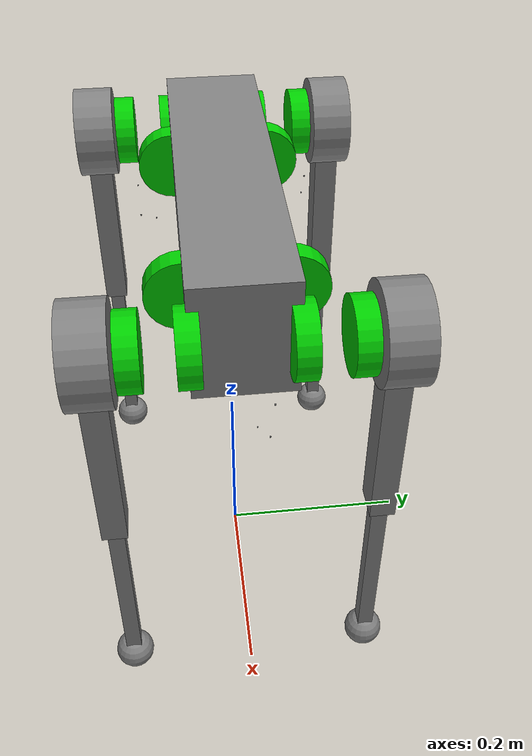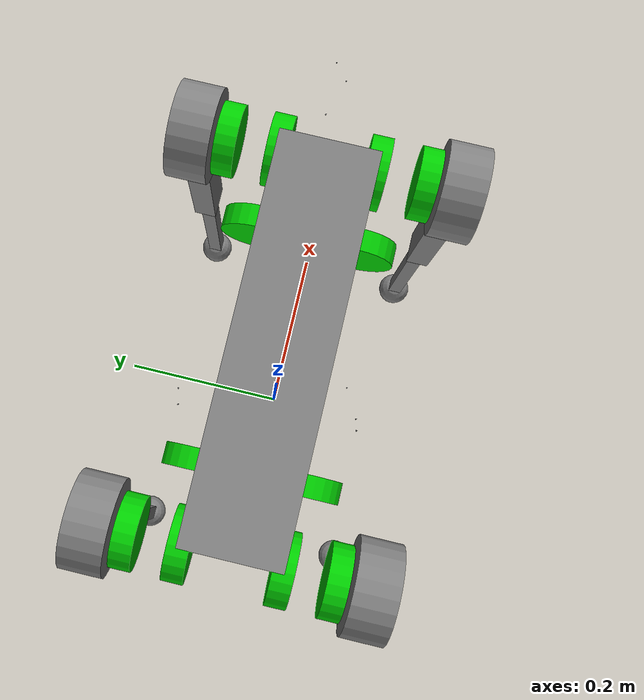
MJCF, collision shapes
<mujoco model="go1">
  <compiler angle="radian" meshdir="assets/"/>

  <option cone="elliptic" impratio="100"/>

  <default>
    <default class="go1">
      <geom friction="0.4" margin="0.001" condim="1"/>
      <joint axis="0 1 0" damping="0.1" armature="0.01" frictionloss="0.2"/>
      <motor ctrlrange="-23.7 23.7"/>
      <default class="abduction">
        <joint axis="1 0 0" range="-0.863 0.863"/>
      </default>
      <default class="hip">
        <default class="front_hip">
          <joint range="-0.686 4.501"/>
        </default>
        <default class="back_hip">
          <joint range="-0.686 4.501"/>
        </default>
      </default>
      <default class="knee">
        <joint range="-2.818 -0.888"/>
        <motor ctrlrange="-35.55 35.55"/>
      </default>
      <default class="visual">
        <geom type="mesh" contype="0" conaffinity="0" group="2" material="dark"/>
      </default>
      <default class="collision">
        <geom group="3"/>
        <default class="foot">
          <geom size="0.022" pos="-0.002 0 -0.213" priority="1" condim="6"
                friction="0.4 0.02 0.01"/>
        </default>
      </default>
    </default>
  </default>

  <asset>
    <material name="metal" rgba=".6 .6 .6 1" shininess="0.5"/>
    <material name="black" rgba=".1 .1 .1 1" shininess="0.25"/>
    <material name="dark" rgba="0.4 0.4 0.4 1" shininess="0.1"/>
    <material name="transparent" rgba="1 1 1 0.01"/>

    <mesh name="trunk" file="trunk.obj" scale="0.0001 0.0001 0.0001"/>
    <mesh name="hip" file="hip.obj" scale="0.001 0.001 0.001"/>
    <mesh name="thigh_mirror" file="thigh_mirror.obj" scale="0.001 0.001 0.001"/>
    <mesh name="calf" file="calf.obj" scale="0.001 0.001 0.001"/>
    <mesh name="thigh" file="thigh.obj" scale="0.001 0.001 0.001"/>
    <mesh name="depthCamera" file="depthCamera.obj" scale="0.001 0.001 0.001"/>
    <mesh name="ultraSound" file="ultraSound.obj" scale="0.001 0.001 0.001"/>
  </asset>

  <worldbody>
    <body name="base_link" pos="0 0 0.445" childclass="go1">
      <inertial pos="0.021112 0 -0.005366" quat="-0.000543471 0.713435 -0.00173769 0.700719"
                mass="6.921"
                diaginertia="0.107027 0.0980771 0.0244531"/>
      <freejoint/>
      <geom type="mesh" mesh="trunk" class="visual" material="dark"/>
      <geom size="0.1881 0.04675 0.057" type="box" class="collision"/>
      <geom size="0.0005 0.0005 0.0005" type="box" contype="0" conaffinity="0" group="2" density="0"/>
      <geom size="0.0005 0.0005 0.0005" pos="-0.01592 -0.06659 -0.00617" type="box" contype="0" conaffinity="0"
            group="2" density="0"/>
      <geom size="0.0005 0.0005 0.0005" pos="-0.01592 -0.06659 -0.00617" type="box"/>
      <geom size="0.035 0.01" pos="0.11215 -0.04675 0" quat="0.707107 0 0.707107 0" type="cylinder" contype="0"
            conaffinity="0" group="2" density="0" rgba="0 0.8 0 1"/>
      <geom size="0.035 0.01" pos="0.11215 -0.04675 0" quat="0.707107 0 0.707107 0" type="cylinder" rgba="0 0.8 0 1"/>
      <geom size="0.035 0.01" pos="0.11215 0.04675 0" quat="0.707107 0 0.707107 0" type="cylinder" contype="0"
            conaffinity="0" group="2" density="0" rgba="0 0.8 0 1"/>
      <geom size="0.035 0.01" pos="0.11215 0.04675 0" quat="0.707107 0 0.707107 0" type="cylinder" rgba="0 0.8 0 1"/>
      <geom size="0.035 0.01" pos="-0.11215 -0.04675 0" quat="0.707107 0 0.707107 0" type="cylinder" contype="0"
            conaffinity="0" group="2" density="0" rgba="0 0.8 0 1"/>
      <geom size="0.035 0.01" pos="-0.11215 -0.04675 0" quat="0.707107 0 0.707107 0" type="cylinder" rgba="0 0.8 0 1"/>
      <geom size="0.035 0.01" pos="-0.11215 0.04675 0" quat="0.707107 0 0.707107 0" type="cylinder" contype="0"
            conaffinity="0" group="2" density="0" rgba="0 0.8 0 1"/>
      <geom size="0.035 0.01" pos="-0.11215 0.04675 0" quat="0.707107 0 0.707107 0" type="cylinder" rgba="0 0.8 0 1"/>
      <geom size="0.0005 0.0005 0.0005" pos="0.2785 0.0125 0.0167" quat="0 1 0 0" type="box"/>
      <geom pos="0.2785 0.0125 0.0167" quat="0 1 0 0" type="mesh" contype="0" conaffinity="0" group="2" density="0"
            mesh="depthCamera"/>
      <geom size="0.0005 0.0005 0.0005" pos="0.2522 0.0125 -0.0436" quat="0 0.707107 0 -0.707107" type="box"/>
      <geom pos="0.2522 0.0125 -0.0436" quat="0 0.707107 0 -0.707107" type="mesh" contype="0" conaffinity="0" group="2"
            density="0" mesh="depthCamera"/>
      <geom size="0.0005 0.0005 0.0005" pos="-0.066 0.082 -0.0176" quat="0.0922962 0.701057 0.701057 -0.0922962"
            type="box"/>
      <geom pos="-0.066 0.082 -0.0176" quat="0.0922962 0.701057 0.701057 -0.0922962" type="mesh" contype="0"
            conaffinity="0" group="2" density="0" mesh="depthCamera"/>
      <geom size="0.0005 0.0005 0.0005" pos="-0.041 -0.082 -0.0176" quat="-0.0922962 0.701057 -0.701057 -0.0922962"
            type="box"/>
      <geom pos="-0.041 -0.082 -0.0176" quat="-0.0922962 0.701057 -0.701057 -0.0922962" type="mesh" contype="0"
            conaffinity="0" group="2" density="0" mesh="depthCamera"/>
      <geom size="0.0005 0.0005 0.0005" pos="-0.0825 0.0125 -0.04365" quat="0 0.707107 0 -0.707107" type="box"/>
      <geom pos="-0.0825 0.0125 -0.04365" quat="0 0.707107 0 -0.707107" type="mesh" contype="0" conaffinity="0"
            group="2" density="0" mesh="depthCamera"/>
      <geom size="0.0005 0.0005 0.0005" pos="-0.0535 0.0826 0.00868" quat="0.701057 -0.0922962 0.0922962 0.701057"
            type="box"/>
      <geom pos="-0.0535 0.0826 0.00868" quat="0.701057 -0.0922962 0.0922962 0.701057" type="mesh" contype="0"
            conaffinity="0" group="2" density="0" rgba="0 0 0 1" mesh="ultraSound"/>
      <geom size="0.0005 0.0005 0.0005" pos="-0.0535 -0.0826 0.00868" quat="0.701057 0.0922962 0.0922962 -0.701057"
            type="box"/>
      <geom pos="-0.0535 -0.0826 0.00868" quat="0.701057 0.0922962 0.0922962 -0.701057" type="mesh" contype="0"
            conaffinity="0" group="2" density="0" rgba="0 0 0 1" mesh="ultraSound"/>
      <geom size="0.0005 0.0005 0.0005" pos="0.2747 0 -0.0088" type="box"/>
      <geom pos="0.2747 0 -0.0088" quat="1 0 0 0" type="mesh" contype="0" conaffinity="0" group="2" density="0"
            rgba="0 0 0 1" mesh="ultraSound"/>
      <site name="imu" pos="-0.02557 0 0.04232"/>

      <body name="FL_hip" pos="0.1881 0.04675 0">
        <inertial pos="-0.0049166 -0.00762615 -8.865e-05" quat="0.482891 0.495027 0.514169 0.507341" mass="0.68"
                  diaginertia="0.000734064 0.000468438 0.000398719"/>
        <joint name="FL_hip_joint" class="abduction"/>
        <geom type="mesh" class="visual" material="metal" mesh="hip"/>
        <geom size="0.046 0.02" pos="0 0.08 0" quat="0.707107 0.707107 0 0" type="cylinder" class="collision"/>
        <geom size="0.035 0.01" pos="0 -0.00015 0" quat="0.707107 0.707107 0 0" type="cylinder" contype="0"
              conaffinity="0" group="2" density="0" rgba="0 0.8 0 1"/>
        <geom size="0.035 0.01" pos="0 -0.00015 0" quat="0.707107 0.707107 0 0" type="cylinder" rgba="0 0.8 0 1"/>
        <body name="FL_thigh" pos="0 0.08 0">
          <inertial pos="-0.00304722 -0.019315 -0.0305004" quat="0.753383 0.0775126 -0.0272313 0.65243" mass="1.009"
                    diaginertia="0.00478717 0.00460903 0.000709268"/>
          <joint name="FL_thigh_joint" class="front_hip"/>
          <geom type="mesh" class="visual" material="metal" mesh="thigh"/>
          <geom size="0.1065 0.01225 0.017" pos="0 0 -0.1065" quat="0.707107 0 0.707107 0" type="box"
                class="collision"/>
          <geom size="0.035 0.01" pos="0 -0.03235 0" quat="0.707107 0.707107 0 0" type="cylinder" contype="0"
                conaffinity="0" group="2" density="0" rgba="0 0.8 0 1"/>
          <geom size="0.035 0.01" pos="0 -0.03235 0" quat="0.707107 0.707107 0 0" type="cylinder" rgba="0 0.8 0 1"/>
          <body name="FL_calf" pos="0 0 -0.213">
            <inertial pos="0.00429862 0.000976676 -0.146197" quat="0.691246 0.00357467 0.00511118 0.722592"
                      mass="0.195862" diaginertia="0.00149767 0.00148468 3.58427e-05"/>
            <joint name="FL_calf_joint" class="knee"/>
            <geom class="visual" material="dark" type="mesh" mesh="calf"/>
            <geom size="0.1065 0.008 0.008" pos="0 0 -0.1065" quat="0.707107 0 0.707107 0" type="box"
                  class="collision"/>
            <geom size="0.01" pos="0 0 -0.213" contype="0" conaffinity="0" group="2" density="0"/>
            <geom size="0.02" pos="0 0 -0.213"/>
            <site name="FL_touch" pos="0 0 -0.213" size="0.027" material="transparent"/>
          </body>
        </body>
      </body>
      <body name="FR_hip" pos="0.1881 -0.04675 0">
        <inertial pos="-0.0049166 0.00762615 -8.865e-05" quat="0.507341 0.514169 0.495027 0.482891"
                  mass="0.68"
                  diaginertia="0.000734064 0.000468438 0.000398719"/>
        <joint name="FR_hip_joint" class="abduction"/>
        <geom quat="0 1 0 0" type="mesh" class="visual" material="metal" mesh="hip"/>
        <geom size="0.046 0.02" pos="0 -0.08 0" quat="0.707107 0.707107 0 0" type="cylinder" class="collision"/>
        <geom size="0.035 0.01" pos="0 0.00015 0" quat="0.707107 0.707107 0 0" type="cylinder" contype="0"
              conaffinity="0" group="2" density="0" rgba="0 0.8 0 1"/>
        <geom size="0.035 0.01" pos="0 0.00015 0" quat="0.707107 0.707107 0 0" type="cylinder" rgba="0 0.8 0 1"/>
        <body name="FR_thigh" pos="0 -0.08 0">
          <inertial pos="-0.00304722 0.019315 -0.0305004" quat="0.65243 -0.0272313 0.0775126 0.753383" mass="1.009"
                    diaginertia="0.00478717 0.00460903 0.000709268"/>
          <joint name="FR_thigh_joint" class="front_hip"/>
          <geom type="mesh" class="visual" material="metal" mesh="thigh_mirror"/>
          <geom size="0.1065 0.01225 0.017" pos="0 0 -0.1065" quat="0.707107 0 0.707107 0" type="box"
                class="collision"/>
          <geom size="0.035 0.01" pos="0 0.03235 0" quat="0.707107 0.707107 0 0" type="cylinder" contype="0"
                conaffinity="0" group="2" density="0" rgba="0 0.8 0 1"/>
          <geom size="0.035 0.01" pos="0 0.03235 0" quat="0.707107 0.707107 0 0" type="cylinder" rgba="0 0.8 0 1"/>
          <body name="FR_calf" pos="0 0 -0.213">
            <inertial pos="0.00429862 0.000976676 -0.146197" quat="0.691246 0.00357467 0.00511118 0.722592"
                      mass="0.195862" diaginertia="0.00149767 0.00148468 3.58427e-05"/>
            <joint name="FR_calf_joint" class="knee"/>
            <geom type="mesh" class="visual" material="dark" mesh="calf"/>
            <geom size="0.1065 0.008 0.008" pos="0 0 -0.1065" quat="0.707107 0 0.707107 0" type="box"
                  class="collision"/>
            <geom size="0.01" pos="0 0 -0.213" contype="0" conaffinity="0" group="2" density="0"/>
            <geom size="0.02" pos="0 0 -0.213"/>
            <site name="FR_touch" pos="0 0 -0.213" size="0.027" material="transparent"/>
          </body>
        </body>
      </body>
      <body name="RL_hip" pos="-0.1881 0.04675 0">
        <inertial pos="0.0049166 -0.00762615 -8.865e-05" quat="0.514169 0.507341 0.482891 0.495027" mass="0.68"
                  diaginertia="0.000734064 0.000468438 0.000398719"/>
        <joint name="RL_hip_joint" class="abduction"/>
        <geom quat="0 0 1 0" class="visual" material="metal" mesh="hip"/>
        <geom size="0.046 0.02" pos="0 0.08 0" quat="0.707107 0.707107 0 0" type="cylinder" class="collision"/>
        <geom size="0.035 0.01" pos="0 -0.00015 0" quat="0.707107 0.707107 0 0" type="cylinder" contype="0"
              conaffinity="0" group="2" density="0" rgba="0 0.8 0 1"/>
        <geom size="0.035 0.01" pos="0 -0.00015 0" quat="0.707107 0.707107 0 0" type="cylinder" rgba="0 0.8 0 1"/>
        <body name="RL_thigh" pos="0 0.08 0">
          <inertial pos="-0.00304722 -0.019315 -0.0305004" quat="0.753383 0.0775126 -0.0272313 0.65243" mass="1.009"
                    diaginertia="0.00478717 0.00460903 0.000709268"/>
          <joint name="RL_thigh_joint" class="back_hip"/>
          <geom type="mesh" class="visual" material="metal" mesh="thigh"/>
          <geom size="0.1065 0.01225 0.017" pos="0 0 -0.1065" quat="0.707107 0 0.707107 0" type="box"
                class="collision"/>
          <geom size="0.035 0.01" pos="0 -0.03235 0" quat="0.707107 0.707107 0 0" type="cylinder" contype="0"
                conaffinity="0" group="2" density="0" rgba="0 0.8 0 1"/>
          <geom size="0.035 0.01" pos="0 -0.03235 0" quat="0.707107 0.707107 0 0" type="cylinder" rgba="0 0.8 0 1"/>
          <body name="RL_calf" pos="0 0 -0.213">
            <inertial pos="0.00429862 0.000976676 -0.146197" quat="0.691246 0.00357467 0.00511118 0.722592"
                      mass="0.195862" diaginertia="0.00149767 0.00148468 3.58427e-05"/>
            <joint name="RL_calf_joint" class="knee"/>
            <geom type="mesh" class="visual" material="dark" mesh="calf"/>
            <geom size="0.1065 0.008 0.008" pos="0 0 -0.1065" quat="0.707107 0 0.707107 0" type="box"
                  class="collision"/>
            <geom size="0.01" pos="0 0 -0.213" contype="0" conaffinity="0" group="2" density="0"/>
            <geom size="0.02" pos="0 0 -0.213"/>
            <site name="RL_touch" pos="0 0 -0.213" size="0.027" material="transparent"/>
          </body>
        </body>
      </body>
      <body name="RR_hip" pos="-0.1881 -0.04675 0">
        <inertial pos="0.0049166 0.00762615 -8.865e-05" quat="0.495027 0.482891 0.507341 0.514169" mass="0.68"
                  diaginertia="0.000734064 0.000468438 0.000398719"/>
        <joint name="RR_hip_joint" class="abduction"/>
        <geom quat="0 0 0 -1" type="mesh" class="visual" material="metal" mesh="hip"/>
        <geom size="0.046 0.02" pos="0 -0.08 0" quat="0.707107 0.707107 0 0" type="cylinder" class="collision"/>
        <geom size="0.035 0.01" pos="0 0.00015 0" quat="0.707107 0.707107 0 0" type="cylinder" contype="0"
              conaffinity="0" group="2" density="0" rgba="0 0.8 0 1"/>
        <geom size="0.035 0.01" pos="0 0.00015 0" quat="0.707107 0.707107 0 0" type="cylinder" rgba="0 0.8 0 1"/>
        <body name="RR_thigh" pos="0 -0.08 0">
          <inertial pos="-0.00304722 0.019315 -0.0305004" quat="0.65243 -0.0272313 0.0775126 0.753383" mass="1.009"
                    diaginertia="0.00478717 0.00460903 0.000709268"/>
          <joint name="RR_thigh_joint" class="back_hip"/>
          <geom type="mesh" class="visual" material="metal" mesh="thigh_mirror"/>
          <geom size="0.1065 0.01225 0.017" pos="0 0 -0.1065" quat="0.707107 0 0.707107 0" type="box"
                class="collision"/>
          <geom size="0.035 0.01" pos="0 0.03235 0" quat="0.707107 0.707107 0 0" type="cylinder" contype="0"
                conaffinity="0" group="2" density="0" rgba="0 0.8 0 1"/>
          <geom size="0.035 0.01" pos="0 0.03235 0" quat="0.707107 0.707107 0 0" type="cylinder" rgba="0 0.8 0 1"/>
          <body name="RR_calf" pos="0 0 -0.213">
            <inertial pos="0.00429862 0.000976676 -0.146197" quat="0.691246 0.00357467 0.00511118 0.722592"
                      mass="0.195862" diaginertia="0.00149767 0.00148468 3.58427e-05"/>
            <joint name="RR_calf_joint" class="knee"/>
            <geom type="mesh" class="visual" material="dark" mesh="calf"/>
            <geom size="0.1065 0.008 0.008" pos="0 0 -0.1065" quat="0.707107 0 0.707107 0" type="box"
                  class="collision"/>
            <geom size="0.01" pos="0 0 -0.213" contype="0" conaffinity="0" group="2" density="0"/>
            <geom size="0.02" pos="0 0 -0.213"/>
            <site name="RR_touch" pos="0 0 -0.213" size="0.027" material="transparent"/>
          </body>
        </body>
      </body>
    </body>
  </worldbody>

  <actuator>
    <motor class="abduction" name="FR_hip" joint="FR_hip_joint"/>
    <motor class="hip" name="FR_thigh" joint="FR_thigh_joint"/>
    <motor class="knee" name="FR_calf" joint="FR_calf_joint"/>
    <motor class="abduction" name="FL_hip" joint="FL_hip_joint"/>
    <motor class="hip" name="FL_thigh" joint="FL_thigh_joint"/>
    <motor class="knee" name="FL_calf" joint="FL_calf_joint"/>
    <motor class="abduction" name="RR_hip" joint="RR_hip_joint"/>
    <motor class="hip" name="RR_thigh" joint="RR_thigh_joint"/>
    <motor class="knee" name="RR_calf" joint="RR_calf_joint"/>
    <motor class="abduction" name="RL_hip" joint="RL_hip_joint"/>
    <motor class="hip" name="RL_thigh" joint="RL_thigh_joint"/>
    <motor class="knee" name="RL_calf" joint="RL_calf_joint"/>
  </actuator>

  <sensor>
    <jointpos name="FR_hip_pos" joint="FR_hip_joint"/>
    <jointpos name="FR_thigh_pos" joint="FR_thigh_joint"/>
    <jointpos name="FR_calf_pos" joint="FR_calf_joint"/>
    <jointpos name="FL_hip_pos" joint="FL_hip_joint"/>
    <jointpos name="FL_thigh_pos" joint="FL_thigh_joint"/>
    <jointpos name="FL_calf_pos" joint="FL_calf_joint"/>
    <jointpos name="RR_hip_pos" joint="RR_hip_joint"/>
    <jointpos name="RR_thigh_pos" joint="RR_thigh_joint"/>
    <jointpos name="RR_calf_pos" joint="RR_calf_joint"/>
    <jointpos name="RL_hip_pos" joint="RL_hip_joint"/>
    <jointpos name="RL_thigh_pos" joint="RL_thigh_joint"/>
    <jointpos name="RL_calf_pos" joint="RL_calf_joint"/>

    <jointvel name="FR_hip_vel" joint="FR_hip_joint"/>
    <jointvel name="FR_thigh_vel" joint="FR_thigh_joint"/>
    <jointvel name="FR_calf_vel" joint="FR_calf_joint"/>
    <jointvel name="FL_hip_vel" joint="FL_hip_joint"/>
    <jointvel name="FL_thigh_vel" joint="FL_thigh_joint"/>
    <jointvel name="FL_calf_vel" joint="FL_calf_joint"/>
    <jointvel name="RR_hip_vel" joint="RR_hip_joint"/>
    <jointvel name="RR_thigh_vel" joint="RR_thigh_joint"/>
    <jointvel name="RR_calf_vel" joint="RR_calf_joint"/>
    <jointvel name="RL_hip_vel" joint="RL_hip_joint"/>
    <jointvel name="RL_thigh_vel" joint="RL_thigh_joint"/>
    <jointvel name="RL_calf_vel" joint="RL_calf_joint"/>

    <jointactuatorfrc name="FR_hip_torque" joint="FR_hip_joint" noise="0.01"/>
    <jointactuatorfrc name="FR_thigh_torque" joint="FR_thigh_joint" noise="0.01"/>
    <jointactuatorfrc name="FR_calf_torque" joint="FR_calf_joint" noise="0.01"/>
    <jointactuatorfrc name="FL_hip_torque" joint="FL_hip_joint" noise="0.01"/>
    <jointactuatorfrc name="FL_thigh_torque" joint="FL_thigh_joint" noise="0.01"/>
    <jointactuatorfrc name="FL_calf_torque" joint="FL_calf_joint" noise="0.01"/>
    <jointactuatorfrc name="RR_hip_torque" joint="RR_hip_joint" noise="0.01"/>
    <jointactuatorfrc name="RR_thigh_torque" joint="RR_thigh_joint" noise="0.01"/>
    <jointactuatorfrc name="RR_calf_torque" joint="RR_calf_joint" noise="0.01"/>
    <jointactuatorfrc name="RL_hip_torque" joint="RL_hip_joint" noise="0.01"/>
    <jointactuatorfrc name="RL_thigh_torque" joint="RL_thigh_joint" noise="0.01"/>
    <jointactuatorfrc name="RL_calf_torque" joint="RL_calf_joint" noise="0.01"/>

    <framequat name="imu_quat" objtype="site" objname="imu"/>
    <gyro name="imu_gyro" site="imu"/>
    <accelerometer name="imu_acc" site="imu"/>

    <framepos name="frame_pos" objtype="site" objname="imu"/>
    <framelinvel name="frame_vel" objtype="site" objname="imu"/>

    <touch name="FR_touch" site="FR_touch"/>
    <touch name="FL_touch" site="FL_touch"/>
    <touch name="RR_touch" site="RR_touch"/>
    <touch name="RL_touch" site="RL_touch"/>
  </sensor>

  <keyframe>
    <key name="home" qpos="0 0 0.0579 1 0 0 0 0.5 1.2 -2.7 -0.5 1.2 -2.7 0.5 1.2 -2.7 -0.5 1.2 -2.7"
         ctrl="0 0 0 0 0 0 0 0 0 0 0 0" />
    <key name="lay_back" qpos="0 0 0.0579108 -1.59225e-05 0.0105444 -0.999944 -4.22632e-07 0.112406 1.71241 -0.887495 -0.112405 1.71241 -0.887491 0.112555 1.71242 -0.887495 -0.112551 1.71242 -0.887495"
         ctrl="0 0 0 0 0 0 0 0 0 0 0 0" />
    <key name="stand" qpos="0 0 0.44 1 0 0 0 0.0 0.2 -0.888 0.0 0.0 -0.888 0.0 0.0 -0.888 0.0 0.0 -0.888"
         ctrl="0 0 0 0 0 0 0 0 0 0 0 0" />
    <key name="stand_raisim" qpos="0 0 0.44 1 0 0 0 0.05 0.8 -1.4 -0.05 0.8 -1.4 0.05 0.8 -1.4 -0.05 0.8 -1.4"
         ctrl="0 0 0 0 0 0 0 0 0 0 0 0"/>
  </keyframe>
</mujoco>
